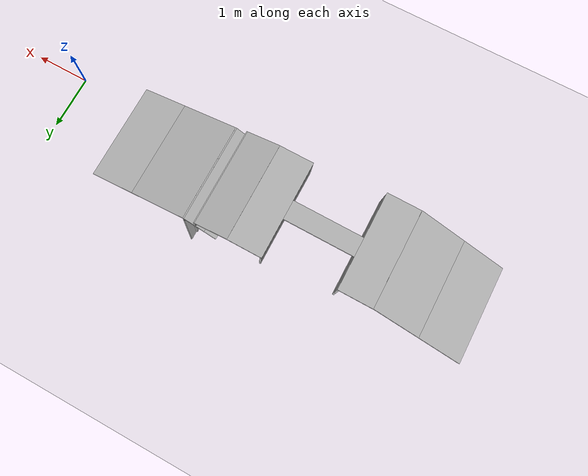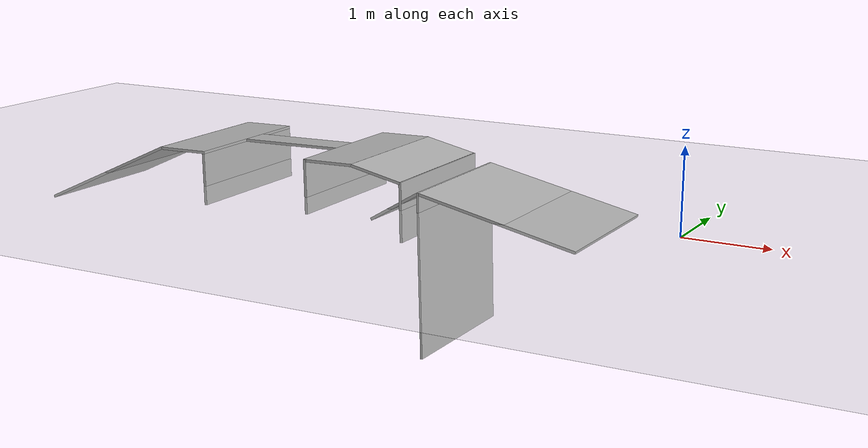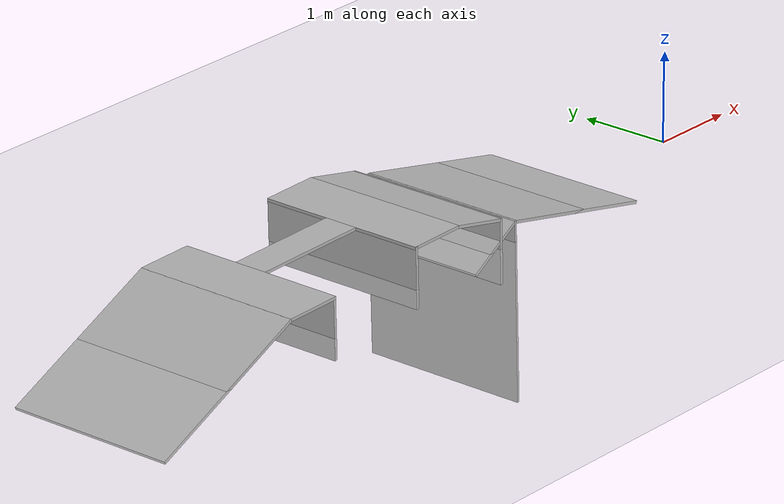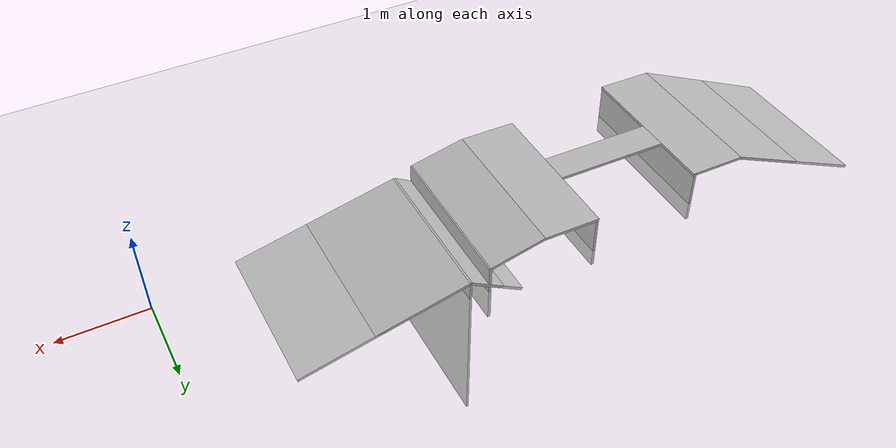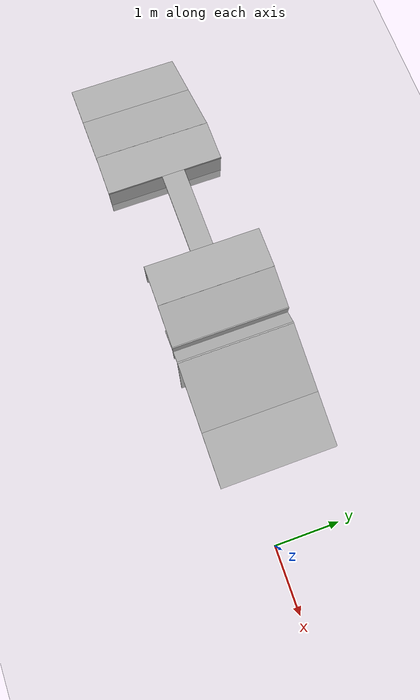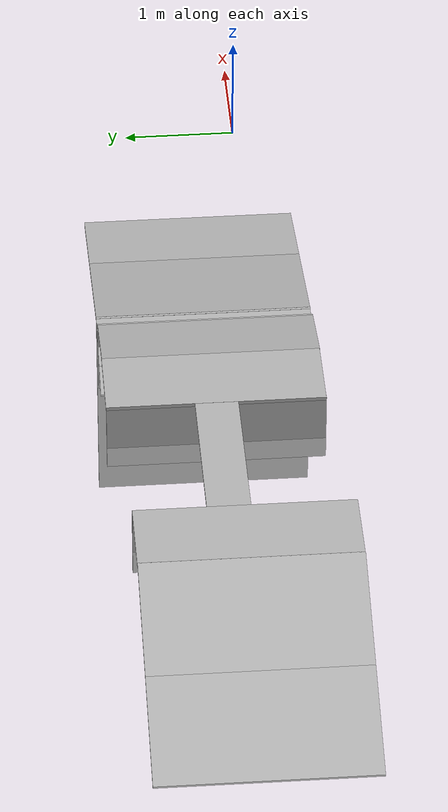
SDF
<sdf version="1.7">
 <world name="default">
  <plugin name="gazebo_ros_state" filename="libgazebo_ros_state.so">
   <ros><namespace>/gazebo</namespace></ros>
   <update_rate>1.0</update_rate>
  </plugin>
  <plugin name="gazebo_ros_properties" filename="libgazebo_ros_properties.so">
   <ros><namespace>/gazebo</namespace></ros>
   <update_rate>1.0</update_rate>
  </plugin>
  <model name="ground_plane">
   <static>1</static>
   <link name="link">
    <collision name="collision">
     <geometry><plane><normal>0 0 1</normal><size>100 100</size></plane></geometry>
     <surface>
      <contact><collide_bitmask>65535</collide_bitmask></contact>
      <friction><ode><mu>1.0</mu><mu2>1.0</mu2></ode></friction>
     </surface>
    </collision>
    <visual name="visual">
     <cast_shadows>0</cast_shadows>
     <geometry><plane><normal>0 0 1</normal><size>100 100</size></plane></geometry>
     <material>
      <script><uri>file://media/materials/scripts/gazebo.material</uri><name>Gazebo/Grey</name></script>
     </material>
    </visual>
   </link>
  </model>
  <light name="sun" type="directional">
   <pose>0 0 10 0 -0 0</pose>
   <diffuse>0.8 0.8 0.8 1</diffuse>
   <specular>0.2 0.2 0.2 1</specular>
   <attenuation>
    <range>1000</range>
    <constant>0.9</constant>
    <linear>0.01</linear>
    <quadratic>0.001</quadratic>
   </attenuation>
   <direction>-0.5 0.1 -0.9</direction>
   <spot><inner_angle>0</inner_angle><outer_angle>0</outer_angle><falloff>0</falloff></spot>
  </light>
  <gravity>0 0 -9.8</gravity>
  <magnetic_field>6e-06 2.3e-05 -4.2e-05</magnetic_field>
  <atmosphere type="adiabatic"/>
  <physics type="ode">
   <max_step_size>0.001</max_step_size>
   <real_time_factor>1</real_time_factor>
   <real_time_update_rate>1000</real_time_update_rate>
  </physics>
  <scene><ambient>0.4 0.4 0.4 1</ambient><background>0.7 0.7 0.7 1</background><shadows>1</shadows></scene>
  <spherical_coordinates>
   <surface_model>EARTH_WGS84</surface_model>
   <latitude_deg>0</latitude_deg>
   <longitude_deg>0</longitude_deg>
   <elevation>0</elevation>
   <heading_deg>0</heading_deg>
  </spherical_coordinates>
  <model name="ramp_12">
   <static>1</static>
   <pose>-1.9971 0.496665 0 0 0.212574 0</pose>
   <link name="link">
    <collision name="collision"><geometry><box><size>1.99786 1.89779 0.0334761</size></box></geometry></collision>
    <visual name="visual"><geometry><box><size>1.99786 1.89779 0.0334761</size></box></geometry></visual>
   </link>
  </model>
  <model name="ramp_0">
   <static>1</static>
   <pose>-2.94544 0.495323 -0.771944 3.14159 -1.53604 3.14159</pose>
   <link name="link">
    <collision name="collision"><geometry><box><size>1.99786 1.89779 0.025973</size></box></geometry></collision>
    <visual name="visual"><geometry><box><size>1.99786 1.89779 0.025973</size></box></geometry></visual>
   </link>
  </model>
  <model name="ramp_1">
   <static>1</static>
   <pose>-3.28876 0.495679 0.025039 0 -0.548358 0</pose>
   <link name="link">
    <collision name="collision"><geometry><box><size>0.715653 1.89779 0.033476</size></box></geometry></collision>
    <visual name="visual"><geometry><box><size>0.715653 1.89779 0.033476</size></box></geometry></visual>
   </link>
  </model>
  <model name="ramp_2">
   <static>1</static>
   <pose>-3.19988 0.495393 -0.032933 3.14159 -1.54205 3.14159</pose>
   <link name="link">
    <collision name="collision"><geometry><box><size>0.715654 1.89779 0.033476</size></box></geometry></collision>
    <visual name="visual"><geometry><box><size>0.715654 1.89779 0.033476</size></box></geometry></visual>
   </link>
  </model>
  <model name="ramp_3">
   <static>1</static>
   <pose>-3.54004 0.494466 0.379646 0 0.212574 0</pose>
   <link name="link">
    <collision name="collision"><geometry><box><size>0.666252 1.89779 0.033476</size></box></geometry></collision>
    <visual name="visual"><geometry><box><size>0.666252 1.89779 0.033476</size></box></geometry></visual>
   </link>
  </model>
  <model name="ramp_4">
   <static>1</static>
   <pose>-4.19542 0.496691 0.444335 0 -0.017033 0</pose>
   <link name="link">
    <collision name="collision"><geometry><box><size>0.666252 1.89779 0.033476</size></box></geometry></collision>
    <visual name="visual"><geometry><box><size>0.666252 1.89779 0.033476</size></box></geometry></visual>
   </link>
  </model>
  <model name="ramp_6">
   <static>1</static>
   <pose>-4.50075 0.49442 0.117677 3.14159 -1.54109 3.14159</pose>
   <link name="link">
    <collision name="collision"><geometry><box><size>0.666252 1.89779 0.033476</size></box></geometry></collision>
    <visual name="visual"><geometry><box><size>0.666252 1.89779 0.033476</size></box></geometry></visual>
   </link>
  </model>
  <model name="ramp_5">
   <static>1</static>
   <pose>-5.19829 0.493755 0.426773 0 -0.017033 0</pose>
   <link name="link">
    <collision name="collision"><geometry><box><size>1.38712 0.374223 0.033476</size></box></geometry></collision>
    <visual name="visual"><geometry><box><size>1.38712 0.374223 0.033476</size></box></geometry></visual>
   </link>
  </model>
  <model name="ramp_8">
   <static>1</static>
   <pose>-6.21232 0.357872 0.409761 0 -0.017033 0</pose>
   <link name="link">
    <collision name="collision"><geometry><box><size>0.666252 1.89779 0.033476</size></box></geometry></collision>
    <visual name="visual"><geometry><box><size>0.666252 1.89779 0.033476</size></box></geometry></visual>
   </link>
  </model>
  <model name="ramp_11">
   <static>1</static>
   <pose>-7.44368 0.355255 -0.012815 0 -0.432808 0</pose>
   <link name="link">
    <collision name="collision"><geometry><box><size>1.99786 1.89779 0.033476</size></box></geometry></collision>
    <visual name="visual"><geometry><box><size>1.99786 1.89779 0.033476</size></box></geometry></visual>
   </link>
  </model>
  <model name="ramp_7">
   <static>1</static>
   <pose>-5.88858 0.360109 0.090247 3.14159 -1.54109 3.14159</pose>
   <link name="link">
    <collision name="collision"><geometry><box><size>0.666252 1.89779 0.033476</size></box></geometry></collision>
    <visual name="visual"><geometry><box><size>0.666252 1.89779 0.033476</size></box></geometry></visual>
   </link>
  </model>
 </world>
</sdf>
